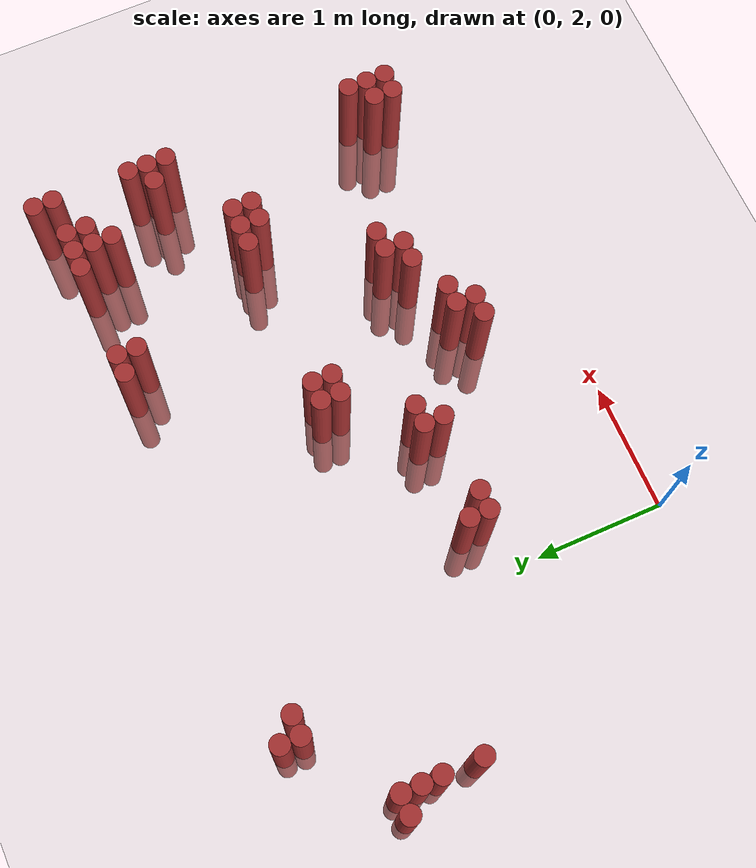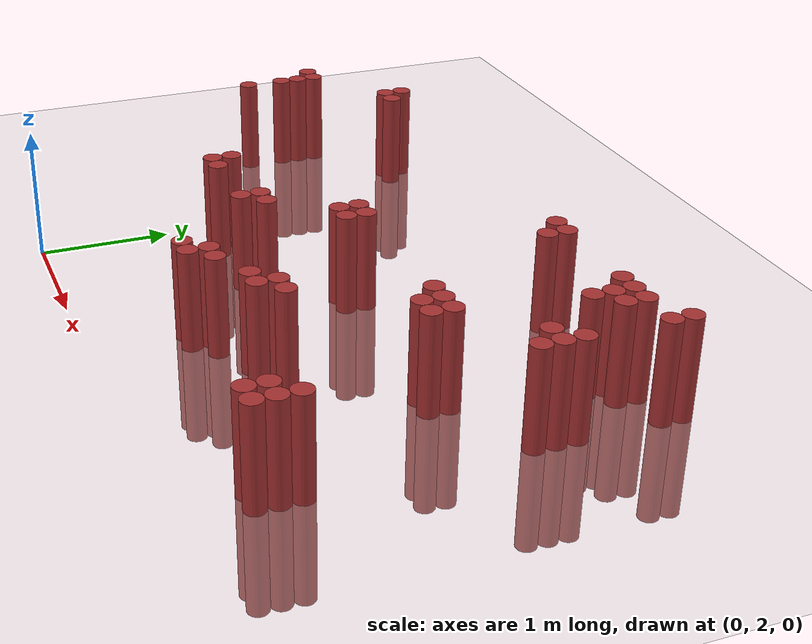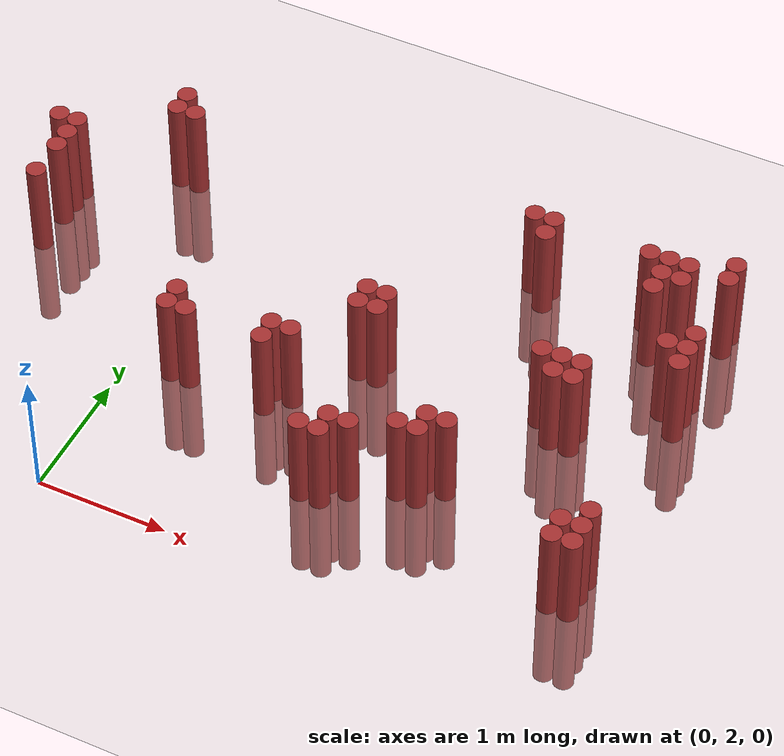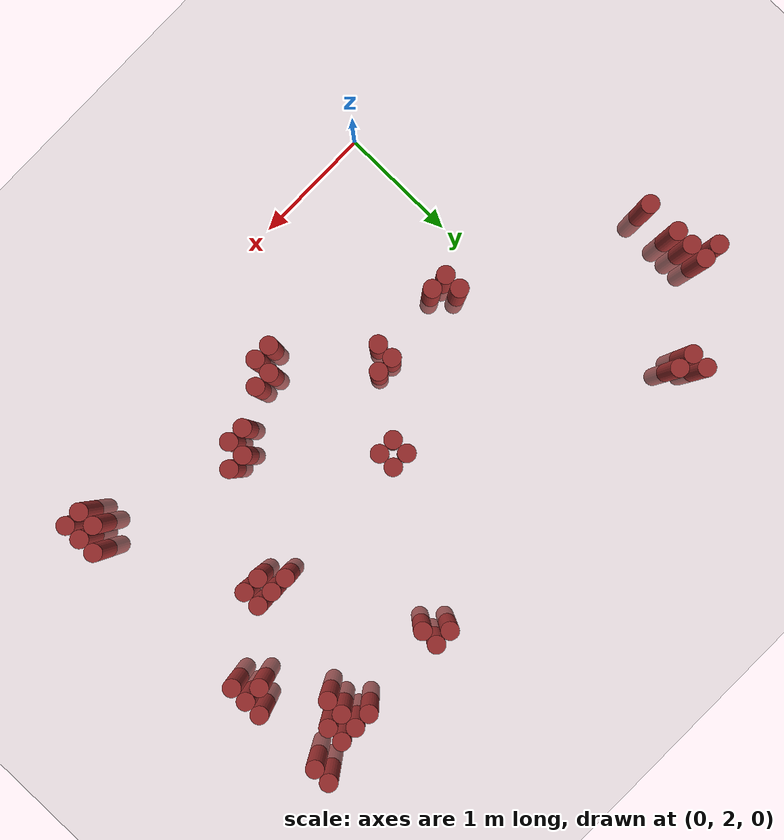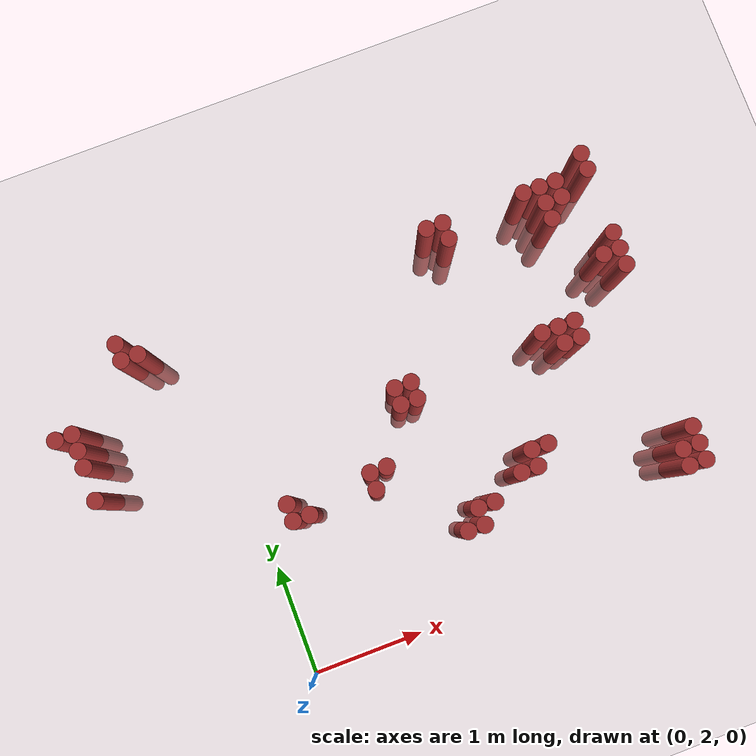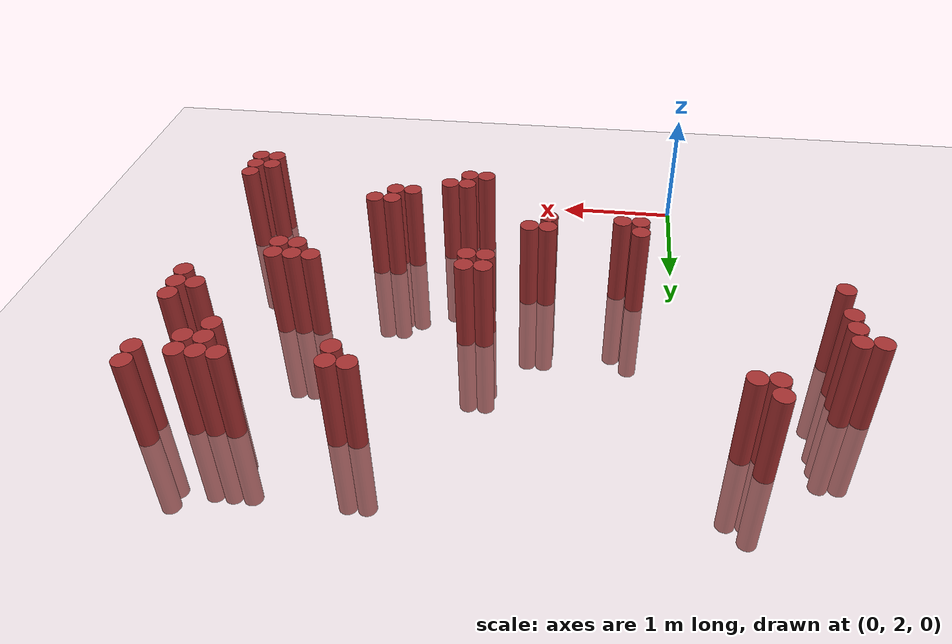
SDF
<sdf version="1.6">
 <world name="default">
  <model name="ground_plane">
   <static>1</static>
   <link name="link">
    <collision name="collision">
     <geometry><plane><normal>0 0 1</normal><size>100 100</size></plane></geometry>
     <surface><friction><ode><mu>100</mu><mu2>50</mu2></ode></friction></surface>
    </collision>
    <visual name="visual">
     <cast_shadows>0</cast_shadows>
     <geometry><plane><normal>0 0 1</normal><size>100 100</size></plane></geometry>
     <material>
      <script><uri>file://media/materials/scripts/gazebo.material</uri><name>Gazebo/Grey</name></script>
     </material>
    </visual>
   </link>
  </model>
  <model name="unit_cylinder_313">
   <static>1</static>
   <pose>-1.325000 4.675000 0.000000 0.000000 0.000000 0.000000</pose>
   <link name="link">
    <inertial>
     <mass>1</mass>
     <inertia><ixx>0.145833</ixx><ixy>0</ixy><ixz>0</ixz><iyy>0.145833</iyy><iyz>0</iyz><izz>0.125</izz></inertia>
    </inertial>
    <collision name="collision">
     <geometry><cylinder><radius>0.075000</radius><length>1.5</length></cylinder></geometry>
    </collision>
    <visual name="visual">
     <geometry><cylinder><radius>0.075000</radius><length>1.5</length></cylinder></geometry>
     <material>
      <ambient>0.648000 0.192000 0.192000 1</ambient>
      <diffuse>0.648000 0.192000 0.192000 1</diffuse>
     </material>
     <material>
      <script><name>Gazebo/Grey</name><uri>file://media/materials/scripts/gazebo.material</uri></script>
     </material>
    </visual>
   </link>
  </model>
  <model name="unit_cylinder_318">
   <static>1</static>
   <pose>-1.175000 4.075000 0.000000 0.000000 0.000000 0.000000</pose>
   <link name="link">
    <inertial>
     <mass>1</mass>
     <inertia><ixx>0.145833</ixx><ixy>0</ixy><ixz>0</ixz><iyy>0.145833</iyy><iyz>0</iyz><izz>0.125</izz></inertia>
    </inertial>
    <collision name="collision">
     <geometry><cylinder><radius>0.075000</radius><length>1.5</length></cylinder></geometry>
    </collision>
    <visual name="visual">
     <geometry><cylinder><radius>0.075000</radius><length>1.5</length></cylinder></geometry>
     <material>
      <ambient>0.648000 0.192000 0.192000 1</ambient>
      <diffuse>0.648000 0.192000 0.192000 1</diffuse>
     </material>
     <material>
      <script><name>Gazebo/Grey</name><uri>file://media/materials/scripts/gazebo.material</uri></script>
     </material>
    </visual>
   </link>
  </model>
  <model name="unit_cylinder_319">
   <static>1</static>
   <pose>-1.175000 4.375000 0.000000 0.000000 0.000000 0.000000</pose>
   <link name="link">
    <inertial>
     <mass>1</mass>
     <inertia><ixx>0.145833</ixx><ixy>0</ixy><ixz>0</ixz><iyy>0.145833</iyy><iyz>0</iyz><izz>0.125</izz></inertia>
    </inertial>
    <collision name="collision">
     <geometry><cylinder><radius>0.075000</radius><length>1.5</length></cylinder></geometry>
    </collision>
    <visual name="visual">
     <geometry><cylinder><radius>0.075000</radius><length>1.5</length></cylinder></geometry>
     <material>
      <ambient>0.648000 0.192000 0.192000 1</ambient>
      <diffuse>0.648000 0.192000 0.192000 1</diffuse>
     </material>
     <material>
      <script><name>Gazebo/Grey</name><uri>file://media/materials/scripts/gazebo.material</uri></script>
     </material>
    </visual>
   </link>
  </model>
  <model name="unit_cylinder_320">
   <static>1</static>
   <pose>-1.175000 4.525000 0.000000 0.000000 0.000000 0.000000</pose>
   <link name="link">
    <inertial>
     <mass>1</mass>
     <inertia><ixx>0.145833</ixx><ixy>0</ixy><ixz>0</ixz><iyy>0.145833</iyy><iyz>0</iyz><izz>0.125</izz></inertia>
    </inertial>
    <collision name="collision">
     <geometry><cylinder><radius>0.075000</radius><length>1.5</length></cylinder></geometry>
    </collision>
    <visual name="visual">
     <geometry><cylinder><radius>0.075000</radius><length>1.5</length></cylinder></geometry>
     <material>
      <ambient>0.648000 0.192000 0.192000 1</ambient>
      <diffuse>0.648000 0.192000 0.192000 1</diffuse>
     </material>
     <material>
      <script><name>Gazebo/Grey</name><uri>file://media/materials/scripts/gazebo.material</uri></script>
     </material>
    </visual>
   </link>
  </model>
  <model name="unit_cylinder_321">
   <static>1</static>
   <pose>-1.175000 4.675000 0.000000 0.000000 0.000000 0.000000</pose>
   <link name="link">
    <inertial>
     <mass>1</mass>
     <inertia><ixx>0.145833</ixx><ixy>0</ixy><ixz>0</ixz><iyy>0.145833</iyy><iyz>0</iyz><izz>0.125</izz></inertia>
    </inertial>
    <collision name="collision">
     <geometry><cylinder><radius>0.075000</radius><length>1.5</length></cylinder></geometry>
    </collision>
    <visual name="visual">
     <geometry><cylinder><radius>0.075000</radius><length>1.5</length></cylinder></geometry>
     <material>
      <ambient>0.648000 0.192000 0.192000 1</ambient>
      <diffuse>0.648000 0.192000 0.192000 1</diffuse>
     </material>
     <material>
      <script><name>Gazebo/Grey</name><uri>file://media/materials/scripts/gazebo.material</uri></script>
     </material>
    </visual>
   </link>
  </model>
  <model name="unit_cylinder_335">
   <static>1</static>
   <pose>-0.575000 5.125000 0.000000 0.000000 0.000000 0.000000</pose>
   <link name="link">
    <inertial>
     <mass>1</mass>
     <inertia><ixx>0.145833</ixx><ixy>0</ixy><ixz>0</ixz><iyy>0.145833</iyy><iyz>0</iyz><izz>0.125</izz></inertia>
    </inertial>
    <collision name="collision">
     <geometry><cylinder><radius>0.075000</radius><length>1.5</length></cylinder></geometry>
    </collision>
    <visual name="visual">
     <geometry><cylinder><radius>0.075000</radius><length>1.5</length></cylinder></geometry>
     <material>
      <ambient>0.648000 0.192000 0.192000 1</ambient>
      <diffuse>0.648000 0.192000 0.192000 1</diffuse>
     </material>
     <material>
      <script><name>Gazebo/Grey</name><uri>file://media/materials/scripts/gazebo.material</uri></script>
     </material>
    </visual>
   </link>
  </model>
  <model name="unit_cylinder_336">
   <static>1</static>
   <pose>-0.575000 5.275000 0.000000 0.000000 0.000000 0.000000</pose>
   <link name="link">
    <inertial>
     <mass>1</mass>
     <inertia><ixx>0.145833</ixx><ixy>0</ixy><ixz>0</ixz><iyy>0.145833</iyy><iyz>0</iyz><izz>0.125</izz></inertia>
    </inertial>
    <collision name="collision">
     <geometry><cylinder><radius>0.075000</radius><length>1.5</length></cylinder></geometry>
    </collision>
    <visual name="visual">
     <geometry><cylinder><radius>0.075000</radius><length>1.5</length></cylinder></geometry>
     <material>
      <ambient>0.648000 0.192000 0.192000 1</ambient>
      <diffuse>0.648000 0.192000 0.192000 1</diffuse>
     </material>
     <material>
      <script><name>Gazebo/Grey</name><uri>file://media/materials/scripts/gazebo.material</uri></script>
     </material>
    </visual>
   </link>
  </model>
  <model name="unit_cylinder_340">
   <static>1</static>
   <pose>-0.425000 5.125000 0.000000 0.000000 0.000000 0.000000</pose>
   <link name="link">
    <inertial>
     <mass>1</mass>
     <inertia><ixx>0.145833</ixx><ixy>0</ixy><ixz>0</ixz><iyy>0.145833</iyy><iyz>0</iyz><izz>0.125</izz></inertia>
    </inertial>
    <collision name="collision">
     <geometry><cylinder><radius>0.075000</radius><length>1.5</length></cylinder></geometry>
    </collision>
    <visual name="visual">
     <geometry><cylinder><radius>0.075000</radius><length>1.5</length></cylinder></geometry>
     <material>
      <ambient>0.648000 0.192000 0.192000 1</ambient>
      <diffuse>0.648000 0.192000 0.192000 1</diffuse>
     </material>
     <material>
      <script><name>Gazebo/Grey</name><uri>file://media/materials/scripts/gazebo.material</uri></script>
     </material>
    </visual>
   </link>
  </model>
  <model name="unit_cylinder_341">
   <static>1</static>
   <pose>0.325000 3.325000 0.000000 0.000000 0.000000 0.000000</pose>
   <link name="link">
    <inertial>
     <mass>1</mass>
     <inertia><ixx>0.145833</ixx><ixy>0</ixy><ixz>0</ixz><iyy>0.145833</iyy><iyz>0</iyz><izz>0.125</izz></inertia>
    </inertial>
    <collision name="collision">
     <geometry><cylinder><radius>0.075000</radius><length>1.5</length></cylinder></geometry>
    </collision>
    <visual name="visual">
     <geometry><cylinder><radius>0.075000</radius><length>1.5</length></cylinder></geometry>
     <material>
      <ambient>0.648000 0.192000 0.192000 1</ambient>
      <diffuse>0.648000 0.192000 0.192000 1</diffuse>
     </material>
     <material>
      <script><name>Gazebo/Grey</name><uri>file://media/materials/scripts/gazebo.material</uri></script>
     </material>
    </visual>
   </link>
  </model>
  <model name="unit_cylinder_342">
   <static>1</static>
   <pose>0.325000 3.475000 0.000000 0.000000 0.000000 0.000000</pose>
   <link name="link">
    <inertial>
     <mass>1</mass>
     <inertia><ixx>0.145833</ixx><ixy>0</ixy><ixz>0</ixz><iyy>0.145833</iyy><iyz>0</iyz><izz>0.125</izz></inertia>
    </inertial>
    <collision name="collision">
     <geometry><cylinder><radius>0.075000</radius><length>1.5</length></cylinder></geometry>
    </collision>
    <visual name="visual">
     <geometry><cylinder><radius>0.075000</radius><length>1.5</length></cylinder></geometry>
     <material>
      <ambient>0.648000 0.192000 0.192000 1</ambient>
      <diffuse>0.648000 0.192000 0.192000 1</diffuse>
     </material>
     <material>
      <script><name>Gazebo/Grey</name><uri>file://media/materials/scripts/gazebo.material</uri></script>
     </material>
    </visual>
   </link>
  </model>
  <model name="unit_cylinder_343">
   <static>1</static>
   <pose>0.475000 3.325000 0.000000 0.000000 0.000000 0.000000</pose>
   <link name="link">
    <inertial>
     <mass>1</mass>
     <inertia><ixx>0.145833</ixx><ixy>0</ixy><ixz>0</ixz><iyy>0.145833</iyy><iyz>0</iyz><izz>0.125</izz></inertia>
    </inertial>
    <collision name="collision">
     <geometry><cylinder><radius>0.075000</radius><length>1.5</length></cylinder></geometry>
    </collision>
    <visual name="visual">
     <geometry><cylinder><radius>0.075000</radius><length>1.5</length></cylinder></geometry>
     <material>
      <ambient>0.648000 0.192000 0.192000 1</ambient>
      <diffuse>0.648000 0.192000 0.192000 1</diffuse>
     </material>
     <material>
      <script><name>Gazebo/Grey</name><uri>file://media/materials/scripts/gazebo.material</uri></script>
     </material>
    </visual>
   </link>
  </model>
  <model name="unit_cylinder_361">
   <static>1</static>
   <pose>1.075000 3.325000 0.000000 0.000000 0.000000 0.000000</pose>
   <link name="link">
    <inertial>
     <mass>1</mass>
     <inertia><ixx>0.145833</ixx><ixy>0</ixy><ixz>0</ixz><iyy>0.145833</iyy><iyz>0</iyz><izz>0.125</izz></inertia>
    </inertial>
    <collision name="collision">
     <geometry><cylinder><radius>0.075000</radius><length>1.5</length></cylinder></geometry>
    </collision>
    <visual name="visual">
     <geometry><cylinder><radius>0.075000</radius><length>1.5</length></cylinder></geometry>
     <material>
      <ambient>0.648000 0.192000 0.192000 1</ambient>
      <diffuse>0.648000 0.192000 0.192000 1</diffuse>
     </material>
     <material>
      <script><name>Gazebo/Grey</name><uri>file://media/materials/scripts/gazebo.material</uri></script>
     </material>
    </visual>
   </link>
  </model>
  <model name="unit_cylinder_362">
   <static>1</static>
   <pose>1.075000 3.475000 0.000000 0.000000 0.000000 0.000000</pose>
   <link name="link">
    <inertial>
     <mass>1</mass>
     <inertia><ixx>0.145833</ixx><ixy>0</ixy><ixz>0</ixz><iyy>0.145833</iyy><iyz>0</iyz><izz>0.125</izz></inertia>
    </inertial>
    <collision name="collision">
     <geometry><cylinder><radius>0.075000</radius><length>1.5</length></cylinder></geometry>
    </collision>
    <visual name="visual">
     <geometry><cylinder><radius>0.075000</radius><length>1.5</length></cylinder></geometry>
     <material>
      <ambient>0.648000 0.192000 0.192000 1</ambient>
      <diffuse>0.648000 0.192000 0.192000 1</diffuse>
     </material>
     <material>
      <script><name>Gazebo/Grey</name><uri>file://media/materials/scripts/gazebo.material</uri></script>
     </material>
    </visual>
   </link>
  </model>
  <model name="unit_cylinder_370">
   <static>1</static>
   <pose>1.225000 3.475000 0.000000 0.000000 0.000000 0.000000</pose>
   <link name="link">
    <inertial>
     <mass>1</mass>
     <inertia><ixx>0.145833</ixx><ixy>0</ixy><ixz>0</ixz><iyy>0.145833</iyy><iyz>0</iyz><izz>0.125</izz></inertia>
    </inertial>
    <collision name="collision">
     <geometry><cylinder><radius>0.075000</radius><length>1.5</length></cylinder></geometry>
    </collision>
    <visual name="visual">
     <geometry><cylinder><radius>0.075000</radius><length>1.5</length></cylinder></geometry>
     <material>
      <ambient>0.648000 0.192000 0.192000 1</ambient>
      <diffuse>0.648000 0.192000 0.192000 1</diffuse>
     </material>
     <material>
      <script><name>Gazebo/Grey</name><uri>file://media/materials/scripts/gazebo.material</uri></script>
     </material>
    </visual>
   </link>
  </model>
  <model name="unit_cylinder_375">
   <static>1</static>
   <pose>1.525000 3.925000 0.000000 0.000000 0.000000 0.000000</pose>
   <link name="link">
    <inertial>
     <mass>1</mass>
     <inertia><ixx>0.145833</ixx><ixy>0</ixy><ixz>0</ixz><iyy>0.145833</iyy><iyz>0</iyz><izz>0.125</izz></inertia>
    </inertial>
    <collision name="collision">
     <geometry><cylinder><radius>0.075000</radius><length>1.5</length></cylinder></geometry>
    </collision>
    <visual name="visual">
     <geometry><cylinder><radius>0.075000</radius><length>1.5</length></cylinder></geometry>
     <material>
      <ambient>0.648000 0.192000 0.192000 1</ambient>
      <diffuse>0.648000 0.192000 0.192000 1</diffuse>
     </material>
     <material>
      <script><name>Gazebo/Grey</name><uri>file://media/materials/scripts/gazebo.material</uri></script>
     </material>
    </visual>
   </link>
  </model>
  <model name="unit_cylinder_376">
   <static>1</static>
   <pose>1.525000 4.075000 0.000000 0.000000 0.000000 0.000000</pose>
   <link name="link">
    <inertial>
     <mass>1</mass>
     <inertia><ixx>0.145833</ixx><ixy>0</ixy><ixz>0</ixz><iyy>0.145833</iyy><iyz>0</iyz><izz>0.125</izz></inertia>
    </inertial>
    <collision name="collision">
     <geometry><cylinder><radius>0.075000</radius><length>1.5</length></cylinder></geometry>
    </collision>
    <visual name="visual">
     <geometry><cylinder><radius>0.075000</radius><length>1.5</length></cylinder></geometry>
     <material>
      <ambient>0.648000 0.192000 0.192000 1</ambient>
      <diffuse>0.648000 0.192000 0.192000 1</diffuse>
     </material>
     <material>
      <script><name>Gazebo/Grey</name><uri>file://media/materials/scripts/gazebo.material</uri></script>
     </material>
    </visual>
   </link>
  </model>
  <model name="unit_cylinder_377">
   <static>1</static>
   <pose>1.675000 2.725000 0.000000 0.000000 0.000000 0.000000</pose>
   <link name="link">
    <inertial>
     <mass>1</mass>
     <inertia><ixx>0.145833</ixx><ixy>0</ixy><ixz>0</ixz><iyy>0.145833</iyy><iyz>0</iyz><izz>0.125</izz></inertia>
    </inertial>
    <collision name="collision">
     <geometry><cylinder><radius>0.075000</radius><length>1.5</length></cylinder></geometry>
    </collision>
    <visual name="visual">
     <geometry><cylinder><radius>0.075000</radius><length>1.5</length></cylinder></geometry>
     <material>
      <ambient>0.648000 0.192000 0.192000 1</ambient>
      <diffuse>0.648000 0.192000 0.192000 1</diffuse>
     </material>
     <material>
      <script><name>Gazebo/Grey</name><uri>file://media/materials/scripts/gazebo.material</uri></script>
     </material>
    </visual>
   </link>
  </model>
  <model name="unit_cylinder_378">
   <static>1</static>
   <pose>1.675000 3.925000 0.000000 0.000000 0.000000 0.000000</pose>
   <link name="link">
    <inertial>
     <mass>1</mass>
     <inertia><ixx>0.145833</ixx><ixy>0</ixy><ixz>0</ixz><iyy>0.145833</iyy><iyz>0</iyz><izz>0.125</izz></inertia>
    </inertial>
    <collision name="collision">
     <geometry><cylinder><radius>0.075000</radius><length>1.5</length></cylinder></geometry>
    </collision>
    <visual name="visual">
     <geometry><cylinder><radius>0.075000</radius><length>1.5</length></cylinder></geometry>
     <material>
      <ambient>0.648000 0.192000 0.192000 1</ambient>
      <diffuse>0.648000 0.192000 0.192000 1</diffuse>
     </material>
     <material>
      <script><name>Gazebo/Grey</name><uri>file://media/materials/scripts/gazebo.material</uri></script>
     </material>
    </visual>
   </link>
  </model>
  <model name="unit_cylinder_379">
   <static>1</static>
   <pose>1.675000 4.075000 0.000000 0.000000 0.000000 0.000000</pose>
   <link name="link">
    <inertial>
     <mass>1</mass>
     <inertia><ixx>0.145833</ixx><ixy>0</ixy><ixz>0</ixz><iyy>0.145833</iyy><iyz>0</iyz><izz>0.125</izz></inertia>
    </inertial>
    <collision name="collision">
     <geometry><cylinder><radius>0.075000</radius><length>1.5</length></cylinder></geometry>
    </collision>
    <visual name="visual">
     <geometry><cylinder><radius>0.075000</radius><length>1.5</length></cylinder></geometry>
     <material>
      <ambient>0.648000 0.192000 0.192000 1</ambient>
      <diffuse>0.648000 0.192000 0.192000 1</diffuse>
     </material>
     <material>
      <script><name>Gazebo/Grey</name><uri>file://media/materials/scripts/gazebo.material</uri></script>
     </material>
    </visual>
   </link>
  </model>
  <model name="unit_cylinder_381">
   <static>1</static>
   <pose>1.825000 2.725000 0.000000 0.000000 0.000000 0.000000</pose>
   <link name="link">
    <inertial>
     <mass>1</mass>
     <inertia><ixx>0.145833</ixx><ixy>0</ixy><ixz>0</ixz><iyy>0.145833</iyy><iyz>0</iyz><izz>0.125</izz></inertia>
    </inertial>
    <collision name="collision">
     <geometry><cylinder><radius>0.075000</radius><length>1.5</length></cylinder></geometry>
    </collision>
    <visual name="visual">
     <geometry><cylinder><radius>0.075000</radius><length>1.5</length></cylinder></geometry>
     <material>
      <ambient>0.648000 0.192000 0.192000 1</ambient>
      <diffuse>0.648000 0.192000 0.192000 1</diffuse>
     </material>
     <material>
      <script><name>Gazebo/Grey</name><uri>file://media/materials/scripts/gazebo.material</uri></script>
     </material>
    </visual>
   </link>
  </model>
  <model name="unit_cylinder_382">
   <static>1</static>
   <pose>1.825000 2.875000 0.000000 0.000000 0.000000 0.000000</pose>
   <link name="link">
    <inertial>
     <mass>1</mass>
     <inertia><ixx>0.145833</ixx><ixy>0</ixy><ixz>0</ixz><iyy>0.145833</iyy><iyz>0</iyz><izz>0.125</izz></inertia>
    </inertial>
    <collision name="collision">
     <geometry><cylinder><radius>0.075000</radius><length>1.5</length></cylinder></geometry>
    </collision>
    <visual name="visual">
     <geometry><cylinder><radius>0.075000</radius><length>1.5</length></cylinder></geometry>
     <material>
      <ambient>0.648000 0.192000 0.192000 1</ambient>
      <diffuse>0.648000 0.192000 0.192000 1</diffuse>
     </material>
     <material>
      <script><name>Gazebo/Grey</name><uri>file://media/materials/scripts/gazebo.material</uri></script>
     </material>
    </visual>
   </link>
  </model>
  <model name="unit_cylinder_385">
   <static>1</static>
   <pose>1.975000 2.875000 0.000000 0.000000 0.000000 0.000000</pose>
   <link name="link">
    <inertial>
     <mass>1</mass>
     <inertia><ixx>0.145833</ixx><ixy>0</ixy><ixz>0</ixz><iyy>0.145833</iyy><iyz>0</iyz><izz>0.125</izz></inertia>
    </inertial>
    <collision name="collision">
     <geometry><cylinder><radius>0.075000</radius><length>1.5</length></cylinder></geometry>
    </collision>
    <visual name="visual">
     <geometry><cylinder><radius>0.075000</radius><length>1.5</length></cylinder></geometry>
     <material>
      <ambient>0.648000 0.192000 0.192000 1</ambient>
      <diffuse>0.648000 0.192000 0.192000 1</diffuse>
     </material>
     <material>
      <script><name>Gazebo/Grey</name><uri>file://media/materials/scripts/gazebo.material</uri></script>
     </material>
    </visual>
   </link>
  </model>
  <model name="unit_cylinder_391">
   <static>1</static>
   <pose>2.275000 3.025000 0.000000 0.000000 0.000000 0.000000</pose>
   <link name="link">
    <inertial>
     <mass>1</mass>
     <inertia><ixx>0.145833</ixx><ixy>0</ixy><ixz>0</ixz><iyy>0.145833</iyy><iyz>0</iyz><izz>0.125</izz></inertia>
    </inertial>
    <collision name="collision">
     <geometry><cylinder><radius>0.075000</radius><length>1.5</length></cylinder></geometry>
    </collision>
    <visual name="visual">
     <geometry><cylinder><radius>0.075000</radius><length>1.5</length></cylinder></geometry>
     <material>
      <ambient>0.648000 0.192000 0.192000 1</ambient>
      <diffuse>0.648000 0.192000 0.192000 1</diffuse>
     </material>
     <material>
      <script><name>Gazebo/Grey</name><uri>file://media/materials/scripts/gazebo.material</uri></script>
     </material>
    </visual>
   </link>
  </model>
  <model name="unit_cylinder_392">
   <static>1</static>
   <pose>2.275000 5.275000 0.000000 0.000000 0.000000 0.000000</pose>
   <link name="link">
    <inertial>
     <mass>1</mass>
     <inertia><ixx>0.145833</ixx><ixy>0</ixy><ixz>0</ixz><iyy>0.145833</iyy><iyz>0</iyz><izz>0.125</izz></inertia>
    </inertial>
    <collision name="collision">
     <geometry><cylinder><radius>0.075000</radius><length>1.5</length></cylinder></geometry>
    </collision>
    <visual name="visual">
     <geometry><cylinder><radius>0.075000</radius><length>1.5</length></cylinder></geometry>
     <material>
      <ambient>0.648000 0.192000 0.192000 1</ambient>
      <diffuse>0.648000 0.192000 0.192000 1</diffuse>
     </material>
     <material>
      <script><name>Gazebo/Grey</name><uri>file://media/materials/scripts/gazebo.material</uri></script>
     </material>
    </visual>
   </link>
  </model>
  <model name="unit_cylinder_395">
   <static>1</static>
   <pose>2.425000 3.025000 0.000000 0.000000 0.000000 0.000000</pose>
   <link name="link">
    <inertial>
     <mass>1</mass>
     <inertia><ixx>0.145833</ixx><ixy>0</ixy><ixz>0</ixz><iyy>0.145833</iyy><iyz>0</iyz><izz>0.125</izz></inertia>
    </inertial>
    <collision name="collision">
     <geometry><cylinder><radius>0.075000</radius><length>1.5</length></cylinder></geometry>
    </collision>
    <visual name="visual">
     <geometry><cylinder><radius>0.075000</radius><length>1.5</length></cylinder></geometry>
     <material>
      <ambient>0.648000 0.192000 0.192000 1</ambient>
      <diffuse>0.648000 0.192000 0.192000 1</diffuse>
     </material>
     <material>
      <script><name>Gazebo/Grey</name><uri>file://media/materials/scripts/gazebo.material</uri></script>
     </material>
    </visual>
   </link>
  </model>
  <model name="unit_cylinder_396">
   <static>1</static>
   <pose>2.425000 3.175000 0.000000 0.000000 0.000000 0.000000</pose>
   <link name="link">
    <inertial>
     <mass>1</mass>
     <inertia><ixx>0.145833</ixx><ixy>0</ixy><ixz>0</ixz><iyy>0.145833</iyy><iyz>0</iyz><izz>0.125</izz></inertia>
    </inertial>
    <collision name="collision">
     <geometry><cylinder><radius>0.075000</radius><length>1.5</length></cylinder></geometry>
    </collision>
    <visual name="visual">
     <geometry><cylinder><radius>0.075000</radius><length>1.5</length></cylinder></geometry>
     <material>
      <ambient>0.648000 0.192000 0.192000 1</ambient>
      <diffuse>0.648000 0.192000 0.192000 1</diffuse>
     </material>
     <material>
      <script><name>Gazebo/Grey</name><uri>file://media/materials/scripts/gazebo.material</uri></script>
     </material>
    </visual>
   </link>
  </model>
  <model name="unit_cylinder_397">
   <static>1</static>
   <pose>2.425000 5.125000 0.000000 0.000000 0.000000 0.000000</pose>
   <link name="link">
    <inertial>
     <mass>1</mass>
     <inertia><ixx>0.145833</ixx><ixy>0</ixy><ixz>0</ixz><iyy>0.145833</iyy><iyz>0</iyz><izz>0.125</izz></inertia>
    </inertial>
    <collision name="collision">
     <geometry><cylinder><radius>0.075000</radius><length>1.5</length></cylinder></geometry>
    </collision>
    <visual name="visual">
     <geometry><cylinder><radius>0.075000</radius><length>1.5</length></cylinder></geometry>
     <material>
      <ambient>0.648000 0.192000 0.192000 1</ambient>
      <diffuse>0.648000 0.192000 0.192000 1</diffuse>
     </material>
     <material>
      <script><name>Gazebo/Grey</name><uri>file://media/materials/scripts/gazebo.material</uri></script>
     </material>
    </visual>
   </link>
  </model>
  <model name="unit_cylinder_398">
   <static>1</static>
   <pose>2.425000 5.275000 0.000000 0.000000 0.000000 0.000000</pose>
   <link name="link">
    <inertial>
     <mass>1</mass>
     <inertia><ixx>0.145833</ixx><ixy>0</ixy><ixz>0</ixz><iyy>0.145833</iyy><iyz>0</iyz><izz>0.125</izz></inertia>
    </inertial>
    <collision name="collision">
     <geometry><cylinder><radius>0.075000</radius><length>1.5</length></cylinder></geometry>
    </collision>
    <visual name="visual">
     <geometry><cylinder><radius>0.075000</radius><length>1.5</length></cylinder></geometry>
     <material>
      <ambient>0.648000 0.192000 0.192000 1</ambient>
      <diffuse>0.648000 0.192000 0.192000 1</diffuse>
     </material>
     <material>
      <script><name>Gazebo/Grey</name><uri>file://media/materials/scripts/gazebo.material</uri></script>
     </material>
    </visual>
   </link>
  </model>
  <model name="unit_cylinder_403">
   <static>1</static>
   <pose>2.575000 3.175000 0.000000 0.000000 0.000000 0.000000</pose>
   <link name="link">
    <inertial>
     <mass>1</mass>
     <inertia><ixx>0.145833</ixx><ixy>0</ixy><ixz>0</ixz><iyy>0.145833</iyy><iyz>0</iyz><izz>0.125</izz></inertia>
    </inertial>
    <collision name="collision">
     <geometry><cylinder><radius>0.075000</radius><length>1.5</length></cylinder></geometry>
    </collision>
    <visual name="visual">
     <geometry><cylinder><radius>0.075000</radius><length>1.5</length></cylinder></geometry>
     <material>
      <ambient>0.648000 0.192000 0.192000 1</ambient>
      <diffuse>0.648000 0.192000 0.192000 1</diffuse>
     </material>
     <material>
      <script><name>Gazebo/Grey</name><uri>file://media/materials/scripts/gazebo.material</uri></script>
     </material>
    </visual>
   </link>
  </model>
  <model name="unit_cylinder_406">
   <static>1</static>
   <pose>2.875000 4.075000 0.000000 0.000000 0.000000 0.000000</pose>
   <link name="link">
    <inertial>
     <mass>1</mass>
     <inertia><ixx>0.145833</ixx><ixy>0</ixy><ixz>0</ixz><iyy>0.145833</iyy><iyz>0</iyz><izz>0.125</izz></inertia>
    </inertial>
    <collision name="collision">
     <geometry><cylinder><radius>0.075000</radius><length>1.5</length></cylinder></geometry>
    </collision>
    <visual name="visual">
     <geometry><cylinder><radius>0.075000</radius><length>1.5</length></cylinder></geometry>
     <material>
      <ambient>0.648000 0.192000 0.192000 1</ambient>
      <diffuse>0.648000 0.192000 0.192000 1</diffuse>
     </material>
     <material>
      <script><name>Gazebo/Grey</name><uri>file://media/materials/scripts/gazebo.material</uri></script>
     </material>
    </visual>
   </link>
  </model>
  <model name="unit_cylinder_411">
   <static>1</static>
   <pose>3.025000 3.925000 0.000000 0.000000 0.000000 0.000000</pose>
   <link name="link">
    <inertial>
     <mass>1</mass>
     <inertia><ixx>0.145833</ixx><ixy>0</ixy><ixz>0</ixz><iyy>0.145833</iyy><iyz>0</iyz><izz>0.125</izz></inertia>
    </inertial>
    <collision name="collision">
     <geometry><cylinder><radius>0.075000</radius><length>1.5</length></cylinder></geometry>
    </collision>
    <visual name="visual">
     <geometry><cylinder><radius>0.075000</radius><length>1.5</length></cylinder></geometry>
     <material>
      <ambient>0.648000 0.192000 0.192000 1</ambient>
      <diffuse>0.648000 0.192000 0.192000 1</diffuse>
     </material>
     <material>
      <script><name>Gazebo/Grey</name><uri>file://media/materials/scripts/gazebo.material</uri></script>
     </material>
    </visual>
   </link>
  </model>
  <model name="unit_cylinder_412">
   <static>1</static>
   <pose>3.025000 4.075000 0.000000 0.000000 0.000000 0.000000</pose>
   <link name="link">
    <inertial>
     <mass>1</mass>
     <inertia><ixx>0.145833</ixx><ixy>0</ixy><ixz>0</ixz><iyy>0.145833</iyy><iyz>0</iyz><izz>0.125</izz></inertia>
    </inertial>
    <collision name="collision">
     <geometry><cylinder><radius>0.075000</radius><length>1.5</length></cylinder></geometry>
    </collision>
    <visual name="visual">
     <geometry><cylinder><radius>0.075000</radius><length>1.5</length></cylinder></geometry>
     <material>
      <ambient>0.648000 0.192000 0.192000 1</ambient>
      <diffuse>0.648000 0.192000 0.192000 1</diffuse>
     </material>
     <material>
      <script><name>Gazebo/Grey</name><uri>file://media/materials/scripts/gazebo.material</uri></script>
     </material>
    </visual>
   </link>
  </model>
  <model name="unit_cylinder_415">
   <static>1</static>
   <pose>3.175000 3.925000 0.000000 0.000000 0.000000 0.000000</pose>
   <link name="link">
    <inertial>
     <mass>1</mass>
     <inertia><ixx>0.145833</ixx><ixy>0</ixy><ixz>0</ixz><iyy>0.145833</iyy><iyz>0</iyz><izz>0.125</izz></inertia>
    </inertial>
    <collision name="collision">
     <geometry><cylinder><radius>0.075000</radius><length>1.5</length></cylinder></geometry>
    </collision>
    <visual name="visual">
     <geometry><cylinder><radius>0.075000</radius><length>1.5</length></cylinder></geometry>
     <material>
      <ambient>0.648000 0.192000 0.192000 1</ambient>
      <diffuse>0.648000 0.192000 0.192000 1</diffuse>
     </material>
     <material>
      <script><name>Gazebo/Grey</name><uri>file://media/materials/scripts/gazebo.material</uri></script>
     </material>
    </visual>
   </link>
  </model>
  <model name="unit_cylinder_416">
   <static>1</static>
   <pose>3.175000 4.075000 0.000000 0.000000 0.000000 0.000000</pose>
   <link name="link">
    <inertial>
     <mass>1</mass>
     <inertia><ixx>0.145833</ixx><ixy>0</ixy><ixz>0</ixz><iyy>0.145833</iyy><iyz>0</iyz><izz>0.125</izz></inertia>
    </inertial>
    <collision name="collision">
     <geometry><cylinder><radius>0.075000</radius><length>1.5</length></cylinder></geometry>
    </collision>
    <visual name="visual">
     <geometry><cylinder><radius>0.075000</radius><length>1.5</length></cylinder></geometry>
     <material>
      <ambient>0.648000 0.192000 0.192000 1</ambient>
      <diffuse>0.648000 0.192000 0.192000 1</diffuse>
     </material>
     <material>
      <script><name>Gazebo/Grey</name><uri>file://media/materials/scripts/gazebo.material</uri></script>
     </material>
    </visual>
   </link>
  </model>
  <model name="unit_cylinder_417">
   <static>1</static>
   <pose>3.175000 5.275000 0.000000 0.000000 0.000000 0.000000</pose>
   <link name="link">
    <inertial>
     <mass>1</mass>
     <inertia><ixx>0.145833</ixx><ixy>0</ixy><ixz>0</ixz><iyy>0.145833</iyy><iyz>0</iyz><izz>0.125</izz></inertia>
    </inertial>
    <collision name="collision">
     <geometry><cylinder><radius>0.075000</radius><length>1.5</length></cylinder></geometry>
    </collision>
    <visual name="visual">
     <geometry><cylinder><radius>0.075000</radius><length>1.5</length></cylinder></geometry>
     <material>
      <ambient>0.648000 0.192000 0.192000 1</ambient>
      <diffuse>0.648000 0.192000 0.192000 1</diffuse>
     </material>
     <material>
      <script><name>Gazebo/Grey</name><uri>file://media/materials/scripts/gazebo.material</uri></script>
     </material>
    </visual>
   </link>
  </model>
  <model name="unit_cylinder_419">
   <static>1</static>
   <pose>3.325000 4.975000 0.000000 0.000000 0.000000 0.000000</pose>
   <link name="link">
    <inertial>
     <mass>1</mass>
     <inertia><ixx>0.145833</ixx><ixy>0</ixy><ixz>0</ixz><iyy>0.145833</iyy><iyz>0</iyz><izz>0.125</izz></inertia>
    </inertial>
    <collision name="collision">
     <geometry><cylinder><radius>0.075000</radius><length>1.5</length></cylinder></geometry>
    </collision>
    <visual name="visual">
     <geometry><cylinder><radius>0.075000</radius><length>1.5</length></cylinder></geometry>
     <material>
      <ambient>0.648000 0.192000 0.192000 1</ambient>
      <diffuse>0.648000 0.192000 0.192000 1</diffuse>
     </material>
     <material>
      <script><name>Gazebo/Grey</name><uri>file://media/materials/scripts/gazebo.material</uri></script>
     </material>
    </visual>
   </link>
  </model>
  <model name="unit_cylinder_420">
   <static>1</static>
   <pose>3.325000 5.125000 0.000000 0.000000 0.000000 0.000000</pose>
   <link name="link">
    <inertial>
     <mass>1</mass>
     <inertia><ixx>0.145833</ixx><ixy>0</ixy><ixz>0</ixz><iyy>0.145833</iyy><iyz>0</iyz><izz>0.125</izz></inertia>
    </inertial>
    <collision name="collision">
     <geometry><cylinder><radius>0.075000</radius><length>1.5</length></cylinder></geometry>
    </collision>
    <visual name="visual">
     <geometry><cylinder><radius>0.075000</radius><length>1.5</length></cylinder></geometry>
     <material>
      <ambient>0.648000 0.192000 0.192000 1</ambient>
      <diffuse>0.648000 0.192000 0.192000 1</diffuse>
     </material>
     <material>
      <script><name>Gazebo/Grey</name><uri>file://media/materials/scripts/gazebo.material</uri></script>
     </material>
    </visual>
   </link>
  </model>
  <model name="unit_cylinder_421">
   <static>1</static>
   <pose>3.325000 5.275000 0.000000 0.000000 0.000000 0.000000</pose>
   <link name="link">
    <inertial>
     <mass>1</mass>
     <inertia><ixx>0.145833</ixx><ixy>0</ixy><ixz>0</ixz><iyy>0.145833</iyy><iyz>0</iyz><izz>0.125</izz></inertia>
    </inertial>
    <collision name="collision">
     <geometry><cylinder><radius>0.075000</radius><length>1.5</length></cylinder></geometry>
    </collision>
    <visual name="visual">
     <geometry><cylinder><radius>0.075000</radius><length>1.5</length></cylinder></geometry>
     <material>
      <ambient>0.648000 0.192000 0.192000 1</ambient>
      <diffuse>0.648000 0.192000 0.192000 1</diffuse>
     </material>
     <material>
      <script><name>Gazebo/Grey</name><uri>file://media/materials/scripts/gazebo.material</uri></script>
     </material>
    </visual>
   </link>
  </model>
  <model name="unit_cylinder_424">
   <static>1</static>
   <pose>3.475000 5.125000 0.000000 0.000000 0.000000 0.000000</pose>
   <link name="link">
    <inertial>
     <mass>1</mass>
     <inertia><ixx>0.145833</ixx><ixy>0</ixy><ixz>0</ixz><iyy>0.145833</iyy><iyz>0</iyz><izz>0.125</izz></inertia>
    </inertial>
    <collision name="collision">
     <geometry><cylinder><radius>0.075000</radius><length>1.5</length></cylinder></geometry>
    </collision>
    <visual name="visual">
     <geometry><cylinder><radius>0.075000</radius><length>1.5</length></cylinder></geometry>
     <material>
      <ambient>0.648000 0.192000 0.192000 1</ambient>
      <diffuse>0.648000 0.192000 0.192000 1</diffuse>
     </material>
     <material>
      <script><name>Gazebo/Grey</name><uri>file://media/materials/scripts/gazebo.material</uri></script>
     </material>
    </visual>
   </link>
  </model>
  <model name="unit_cylinder_425">
   <static>1</static>
   <pose>3.475000 5.275000 0.000000 0.000000 0.000000 0.000000</pose>
   <link name="link">
    <inertial>
     <mass>1</mass>
     <inertia><ixx>0.145833</ixx><ixy>0</ixy><ixz>0</ixz><iyy>0.145833</iyy><iyz>0</iyz><izz>0.125</izz></inertia>
    </inertial>
    <collision name="collision">
     <geometry><cylinder><radius>0.075000</radius><length>1.5</length></cylinder></geometry>
    </collision>
    <visual name="visual">
     <geometry><cylinder><radius>0.075000</radius><length>1.5</length></cylinder></geometry>
     <material>
      <ambient>0.648000 0.192000 0.192000 1</ambient>
      <diffuse>0.648000 0.192000 0.192000 1</diffuse>
     </material>
     <material>
      <script><name>Gazebo/Grey</name><uri>file://media/materials/scripts/gazebo.material</uri></script>
     </material>
    </visual>
   </link>
  </model>
  <model name="unit_cylinder_431">
   <static>1</static>
   <pose>3.625000 2.575000 0.000000 0.000000 0.000000 0.000000</pose>
   <link name="link">
    <inertial>
     <mass>1</mass>
     <inertia><ixx>0.145833</ixx><ixy>0</ixy><ixz>0</ixz><iyy>0.145833</iyy><iyz>0</iyz><izz>0.125</izz></inertia>
    </inertial>
    <collision name="collision">
     <geometry><cylinder><radius>0.075000</radius><length>1.5</length></cylinder></geometry>
    </collision>
    <visual name="visual">
     <geometry><cylinder><radius>0.075000</radius><length>1.5</length></cylinder></geometry>
     <material>
      <ambient>0.648000 0.192000 0.192000 1</ambient>
      <diffuse>0.648000 0.192000 0.192000 1</diffuse>
     </material>
     <material>
      <script><name>Gazebo/Grey</name><uri>file://media/materials/scripts/gazebo.material</uri></script>
     </material>
    </visual>
   </link>
  </model>
  <model name="unit_cylinder_432">
   <static>1</static>
   <pose>3.625000 2.725000 0.000000 0.000000 0.000000 0.000000</pose>
   <link name="link">
    <inertial>
     <mass>1</mass>
     <inertia><ixx>0.145833</ixx><ixy>0</ixy><ixz>0</ixz><iyy>0.145833</iyy><iyz>0</iyz><izz>0.125</izz></inertia>
    </inertial>
    <collision name="collision">
     <geometry><cylinder><radius>0.075000</radius><length>1.5</length></cylinder></geometry>
    </collision>
    <visual name="visual">
     <geometry><cylinder><radius>0.075000</radius><length>1.5</length></cylinder></geometry>
     <material>
      <ambient>0.648000 0.192000 0.192000 1</ambient>
      <diffuse>0.648000 0.192000 0.192000 1</diffuse>
     </material>
     <material>
      <script><name>Gazebo/Grey</name><uri>file://media/materials/scripts/gazebo.material</uri></script>
     </material>
    </visual>
   </link>
  </model>
  <model name="unit_cylinder_433">
   <static>1</static>
   <pose>3.625000 4.525000 0.000000 0.000000 0.000000 0.000000</pose>
   <link name="link">
    <inertial>
     <mass>1</mass>
     <inertia><ixx>0.145833</ixx><ixy>0</ixy><ixz>0</ixz><iyy>0.145833</iyy><iyz>0</iyz><izz>0.125</izz></inertia>
    </inertial>
    <collision name="collision">
     <geometry><cylinder><radius>0.075000</radius><length>1.5</length></cylinder></geometry>
    </collision>
    <visual name="visual">
     <geometry><cylinder><radius>0.075000</radius><length>1.5</length></cylinder></geometry>
     <material>
      <ambient>0.648000 0.192000 0.192000 1</ambient>
      <diffuse>0.648000 0.192000 0.192000 1</diffuse>
     </material>
     <material>
      <script><name>Gazebo/Grey</name><uri>file://media/materials/scripts/gazebo.material</uri></script>
     </material>
    </visual>
   </link>
  </model>
  <model name="unit_cylinder_452">
   <static>1</static>
   <pose>3.775000 2.575000 0.000000 0.000000 0.000000 0.000000</pose>
   <link name="link">
    <inertial>
     <mass>1</mass>
     <inertia><ixx>0.145833</ixx><ixy>0</ixy><ixz>0</ixz><iyy>0.145833</iyy><iyz>0</iyz><izz>0.125</izz></inertia>
    </inertial>
    <collision name="collision">
     <geometry><cylinder><radius>0.075000</radius><length>1.5</length></cylinder></geometry>
    </collision>
    <visual name="visual">
     <geometry><cylinder><radius>0.075000</radius><length>1.5</length></cylinder></geometry>
     <material>
      <ambient>0.648000 0.192000 0.192000 1</ambient>
      <diffuse>0.648000 0.192000 0.192000 1</diffuse>
     </material>
     <material>
      <script><name>Gazebo/Grey</name><uri>file://media/materials/scripts/gazebo.material</uri></script>
     </material>
    </visual>
   </link>
  </model>
  <model name="unit_cylinder_453">
   <static>1</static>
   <pose>3.775000 2.725000 0.000000 0.000000 0.000000 0.000000</pose>
   <link name="link">
    <inertial>
     <mass>1</mass>
     <inertia><ixx>0.145833</ixx><ixy>0</ixy><ixz>0</ixz><iyy>0.145833</iyy><iyz>0</iyz><izz>0.125</izz></inertia>
    </inertial>
    <collision name="collision">
     <geometry><cylinder><radius>0.075000</radius><length>1.5</length></cylinder></geometry>
    </collision>
    <visual name="visual">
     <geometry><cylinder><radius>0.075000</radius><length>1.5</length></cylinder></geometry>
     <material>
      <ambient>0.648000 0.192000 0.192000 1</ambient>
      <diffuse>0.648000 0.192000 0.192000 1</diffuse>
     </material>
     <material>
      <script><name>Gazebo/Grey</name><uri>file://media/materials/scripts/gazebo.material</uri></script>
     </material>
    </visual>
   </link>
  </model>
  <model name="unit_cylinder_454">
   <static>1</static>
   <pose>3.775000 2.875000 0.000000 0.000000 0.000000 0.000000</pose>
   <link name="link">
    <inertial>
     <mass>1</mass>
     <inertia><ixx>0.145833</ixx><ixy>0</ixy><ixz>0</ixz><iyy>0.145833</iyy><iyz>0</iyz><izz>0.125</izz></inertia>
    </inertial>
    <collision name="collision">
     <geometry><cylinder><radius>0.075000</radius><length>1.5</length></cylinder></geometry>
    </collision>
    <visual name="visual">
     <geometry><cylinder><radius>0.075000</radius><length>1.5</length></cylinder></geometry>
     <material>
      <ambient>0.648000 0.192000 0.192000 1</ambient>
      <diffuse>0.648000 0.192000 0.192000 1</diffuse>
     </material>
     <material>
      <script><name>Gazebo/Grey</name><uri>file://media/materials/scripts/gazebo.material</uri></script>
     </material>
    </visual>
   </link>
  </model>
  <model name="unit_cylinder_455">
   <static>1</static>
   <pose>3.775000 4.375000 0.000000 0.000000 0.000000 0.000000</pose>
   <link name="link">
    <inertial>
     <mass>1</mass>
     <inertia><ixx>0.145833</ixx><ixy>0</ixy><ixz>0</ixz><iyy>0.145833</iyy><iyz>0</iyz><izz>0.125</izz></inertia>
    </inertial>
    <collision name="collision">
     <geometry><cylinder><radius>0.075000</radius><length>1.5</length></cylinder></geometry>
    </collision>
    <visual name="visual">
     <geometry><cylinder><radius>0.075000</radius><length>1.5</length></cylinder></geometry>
     <material>
      <ambient>0.648000 0.192000 0.192000 1</ambient>
      <diffuse>0.648000 0.192000 0.192000 1</diffuse>
     </material>
     <material>
      <script><name>Gazebo/Grey</name><uri>file://media/materials/scripts/gazebo.material</uri></script>
     </material>
    </visual>
   </link>
  </model>
  <model name="unit_cylinder_456">
   <static>1</static>
   <pose>3.775000 4.525000 0.000000 0.000000 0.000000 0.000000</pose>
   <link name="link">
    <inertial>
     <mass>1</mass>
     <inertia><ixx>0.145833</ixx><ixy>0</ixy><ixz>0</ixz><iyy>0.145833</iyy><iyz>0</iyz><izz>0.125</izz></inertia>
    </inertial>
    <collision name="collision">
     <geometry><cylinder><radius>0.075000</radius><length>1.5</length></cylinder></geometry>
    </collision>
    <visual name="visual">
     <geometry><cylinder><radius>0.075000</radius><length>1.5</length></cylinder></geometry>
     <material>
      <ambient>0.648000 0.192000 0.192000 1</ambient>
      <diffuse>0.648000 0.192000 0.192000 1</diffuse>
     </material>
     <material>
      <script><name>Gazebo/Grey</name><uri>file://media/materials/scripts/gazebo.material</uri></script>
     </material>
    </visual>
   </link>
  </model>
  <model name="unit_cylinder_457">
   <static>1</static>
   <pose>3.775000 4.675000 0.000000 0.000000 0.000000 0.000000</pose>
   <link name="link">
    <inertial>
     <mass>1</mass>
     <inertia><ixx>0.145833</ixx><ixy>0</ixy><ixz>0</ixz><iyy>0.145833</iyy><iyz>0</iyz><izz>0.125</izz></inertia>
    </inertial>
    <collision name="collision">
     <geometry><cylinder><radius>0.075000</radius><length>1.5</length></cylinder></geometry>
    </collision>
    <visual name="visual">
     <geometry><cylinder><radius>0.075000</radius><length>1.5</length></cylinder></geometry>
     <material>
      <ambient>0.648000 0.192000 0.192000 1</ambient>
      <diffuse>0.648000 0.192000 0.192000 1</diffuse>
     </material>
     <material>
      <script><name>Gazebo/Grey</name><uri>file://media/materials/scripts/gazebo.material</uri></script>
     </material>
    </visual>
   </link>
  </model>
  <model name="unit_cylinder_458">
   <static>1</static>
   <pose>3.775000 5.275000 0.000000 0.000000 0.000000 0.000000</pose>
   <link name="link">
    <inertial>
     <mass>1</mass>
     <inertia><ixx>0.145833</ixx><ixy>0</ixy><ixz>0</ixz><iyy>0.145833</iyy><iyz>0</iyz><izz>0.125</izz></inertia>
    </inertial>
    <collision name="collision">
     <geometry><cylinder><radius>0.075000</radius><length>1.5</length></cylinder></geometry>
    </collision>
    <visual name="visual">
     <geometry><cylinder><radius>0.075000</radius><length>1.5</length></cylinder></geometry>
     <material>
      <ambient>0.648000 0.192000 0.192000 1</ambient>
      <diffuse>0.648000 0.192000 0.192000 1</diffuse>
     </material>
     <material>
      <script><name>Gazebo/Grey</name><uri>file://media/materials/scripts/gazebo.material</uri></script>
     </material>
    </visual>
   </link>
  </model>
  <model name="unit_cylinder_459">
   <static>1</static>
   <pose>3.775000 5.425000 0.000000 0.000000 0.000000 0.000000</pose>
   <link name="link">
    <inertial>
     <mass>1</mass>
     <inertia><ixx>0.145833</ixx><ixy>0</ixy><ixz>0</ixz><iyy>0.145833</iyy><iyz>0</iyz><izz>0.125</izz></inertia>
    </inertial>
    <collision name="collision">
     <geometry><cylinder><radius>0.075000</radius><length>1.5</length></cylinder></geometry>
    </collision>
    <visual name="visual">
     <geometry><cylinder><radius>0.075000</radius><length>1.5</length></cylinder></geometry>
     <material>
      <ambient>0.648000 0.192000 0.192000 1</ambient>
      <diffuse>0.648000 0.192000 0.192000 1</diffuse>
     </material>
     <material>
      <script><name>Gazebo/Grey</name><uri>file://media/materials/scripts/gazebo.material</uri></script>
     </material>
    </visual>
   </link>
  </model>
 </world>
</sdf>
